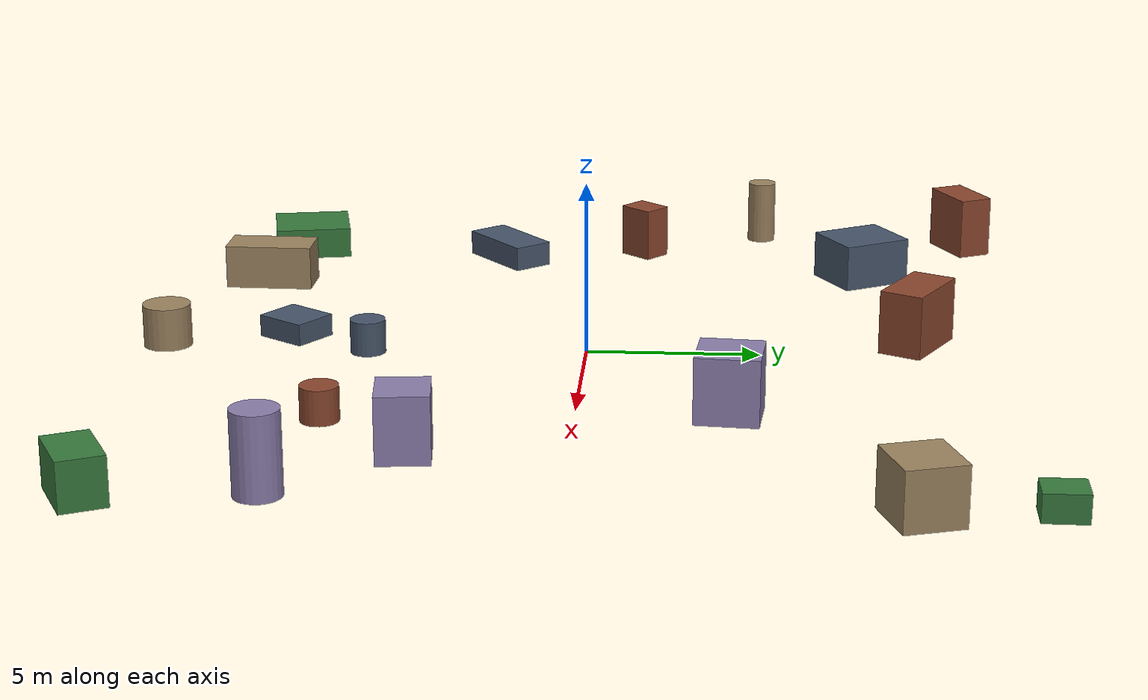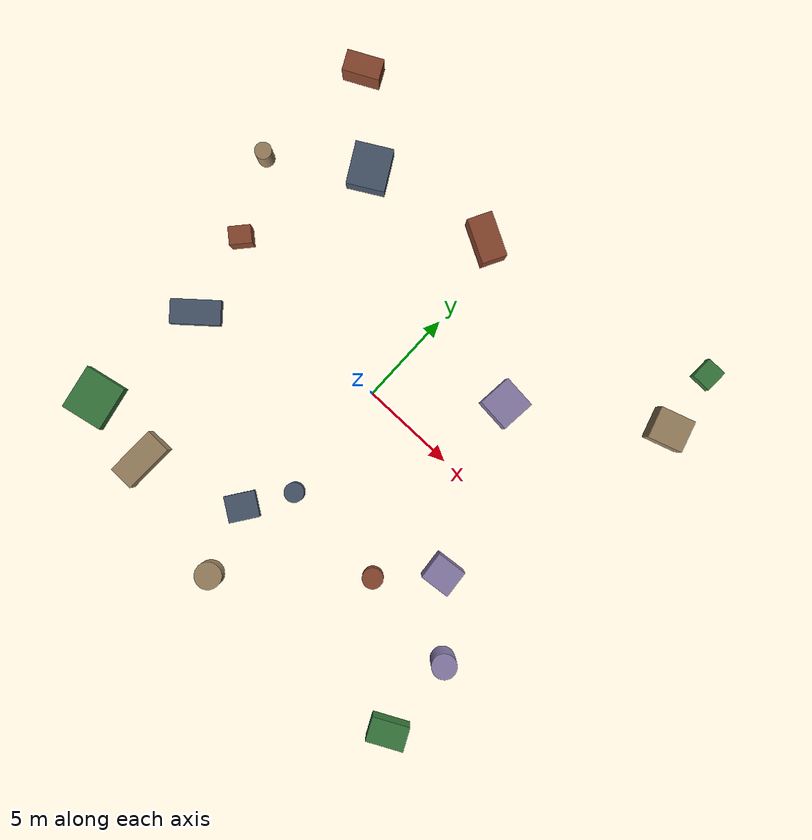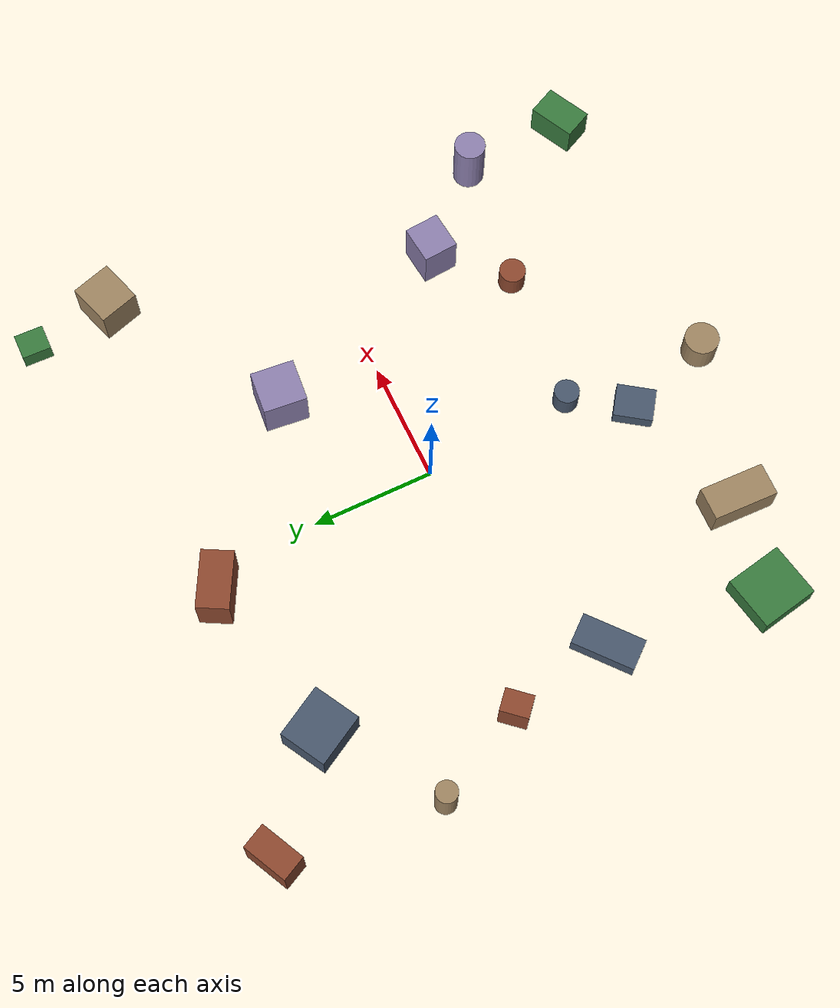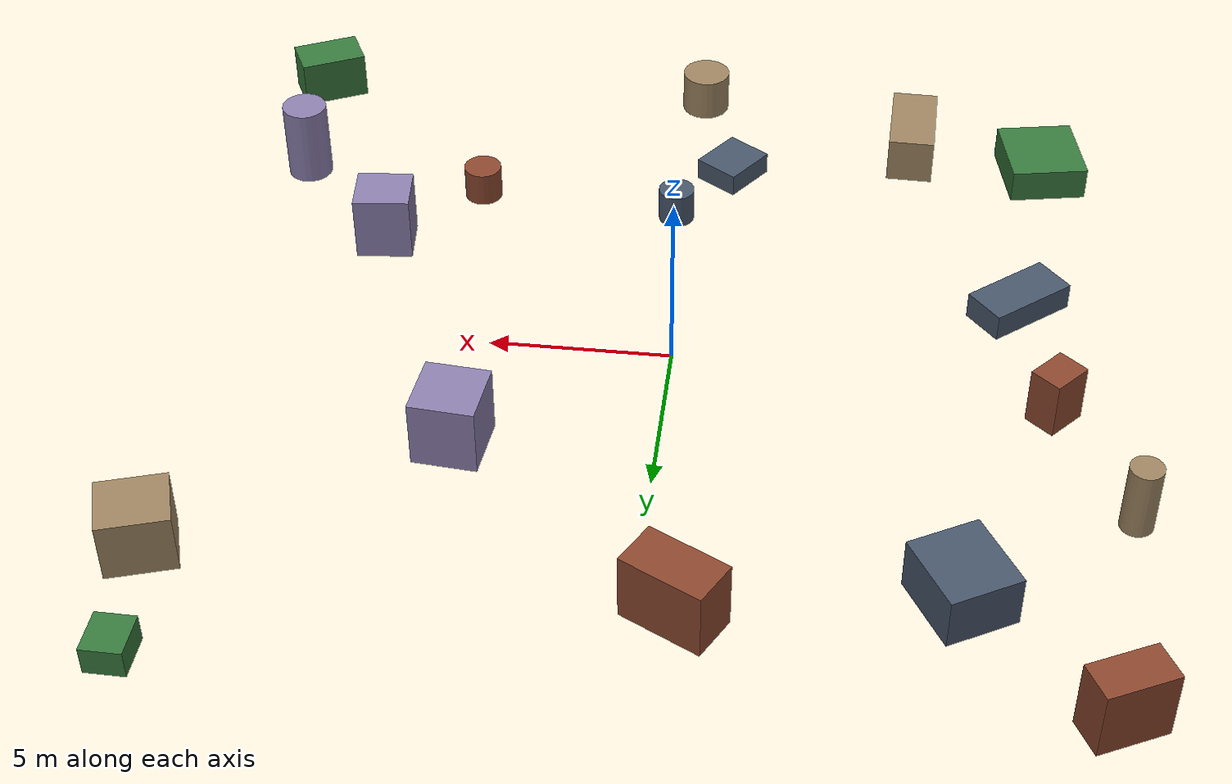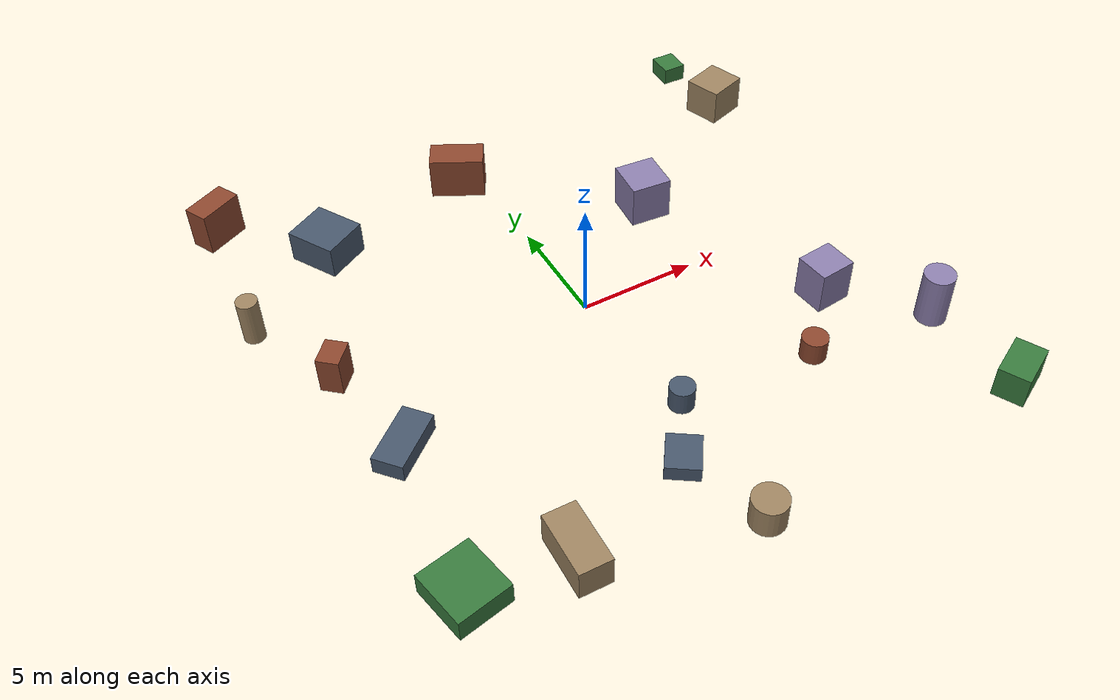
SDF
<sdf version="1.10">
 <world name="robotx_task1_uav_view">
  <gravity>0 0 -9.81</gravity>
  <physics name="physics" type="ode">
   <max_step_size>0.002</max_step_size>
   <real_time_factor>1.0</real_time_factor>
  </physics>
  <scene>
   <ambient>0.27 0.27 0.27 1.0</ambient>
   <background>0.62 0.75 0.92 1.0</background>
   <shadows>true</shadows>
   <grid>false</grid>
  </scene>
  <light name="sun" type="directional">
   <pose>0 0 300 0 0 0</pose>
   <diffuse>1.00 0.98 0.94 1.0</diffuse>
   <specular>1.00 1.00 1.00 1.0</specular>
   <direction>0.26 -0.12 -1.0</direction>
   <attenuation>
    <range>2500</range>
    <constant>0.85</constant>
    <linear>0.001</linear>
    <quadratic>0.00005</quadratic>
   </attenuation>
  </light>
  <plugin filename="gz-sim-physics-system" name="gz::sim::systems::Physics"/>
  <plugin filename="gz-sim-user-commands-system" name="gz::sim::systems::UserCommands"/>
  <plugin filename="gz-sim-scene-broadcaster-system" name="gz::sim::systems::SceneBroadcaster"/>
  <plugin filename="gz-sim-sensors-system" name="gz::sim::systems::Sensors">
   <render_engine>ogre2</render_engine>
  </plugin>
  <model name="scene_clutter_box_000">
   <static>true</static>
   <pose>-6.219 -10.278 0.683 0 0 -1.597080</pose>
   <link name="link">
    <visual name="v">
     <geometry><box><size>2.664 1.328 1.325</size></box></geometry>
     <material><ambient>0.45 0.38 0.32 1.0</ambient><diffuse>0.62 0.52 0.38 1.0</diffuse></material>
    </visual>
   </link>
  </model>
  <model name="scene_clutter_box_001">
   <static>true</static>
   <pose>-7.771 8.243 0.724 0 0 -2.627709</pose>
   <link name="link">
    <visual name="v">
     <geometry><box><size>1.978 2.196 1.408</size></box></geometry>
     <material><ambient>0.18 0.22 0.28 1.0</ambient><diffuse>0.28 0.34 0.42 1.0</diffuse></material>
    </visual>
   </link>
  </model>
  <model name="scene_clutter_box_002">
   <static>true</static>
   <pose>-1.053 9.536 0.956 0 0 -0.490936</pose>
   <link name="link">
    <visual name="v">
     <geometry><box><size>2.330 1.303 1.871</size></box></geometry>
     <material><ambient>0.35 0.16 0.12 1.0</ambient><diffuse>0.55 0.28 0.18 1.0</diffuse></material>
    </visual>
   </link>
  </model>
  <model name="scene_clutter_box_003">
   <static>true</static>
   <pose>11.764 12.211 0.409 0 0 -1.589477</pose>
   <link name="link">
    <visual name="v">
     <geometry><box><size>1.196 1.062 0.777</size></box></geometry>
     <material><ambient>0.12 0.30 0.14 1.0</ambient><diffuse>0.22 0.48 0.24 1.0</diffuse></material>
    </visual>
   </link>
  </model>
  <model name="scene_clutter_box_004">
   <static>true</static>
   <pose>8.699 -4.169 0.954 0 0 0.095027</pose>
   <link name="link">
    <visual name="v">
     <geometry><box><size>1.582 1.454 1.867</size></box></geometry>
     <material><ambient>0.40 0.35 0.50 1.0</ambient><diffuse>0.55 0.50 0.68 1.0</diffuse></material>
    </visual>
   </link>
  </model>
  <model name="scene_clutter_cyl_005">
   <static>true</static>
   <pose>0.211 -12.183 0.671 0 0 0.648876</pose>
   <link name="link">
    <visual name="v">
     <geometry><cylinder><radius>0.701</radius><length>1.242</length></cylinder></geometry>
     <material><ambient>0.45 0.38 0.32 1.0</ambient><diffuse>0.62 0.52 0.38 1.0</diffuse></material>
    </visual>
   </link>
  </model>
  <model name="scene_clutter_cyl_006">
   <static>true</static>
   <pose>0.527 -6.271 0.548 0 0 0.602536</pose>
   <link name="link">
    <visual name="v">
     <geometry><cylinder><radius>0.512</radius><length>0.996</length></cylinder></geometry>
     <material><ambient>0.18 0.22 0.28 1.0</ambient><diffuse>0.28 0.34 0.42 1.0</diffuse></material>
    </visual>
   </link>
  </model>
  <model name="scene_clutter_box_007">
   <static>true</static>
   <pose>-11.393 11.654 0.966 0 0 0.463789</pose>
   <link name="link">
    <visual name="v">
     <geometry><box><size>1.908 1.063 1.892</size></box></geometry>
     <material><ambient>0.35 0.16 0.12 1.0</ambient><diffuse>0.55 0.28 0.18 1.0</diffuse></material>
    </visual>
   </link>
  </model>
  <model name="scene_clutter_box_008">
   <static>true</static>
   <pose>-10.071 -9.641 0.494 0 0 1.763439</pose>
   <link name="link">
    <visual name="v">
     <geometry><box><size>2.379 2.204 0.948</size></box></geometry>
     <material><ambient>0.12 0.30 0.14 1.0</ambient><diffuse>0.22 0.48 0.24 1.0</diffuse></material>
    </visual>
   </link>
  </model>
  <model name="scene_clutter_cyl_009">
   <static>true</static>
   <pose>11.707 -7.378 1.191 0 0 1.843822</pose>
   <link name="link">
    <visual name="v">
     <geometry><cylinder><radius>0.643</radius><length>2.282</length></cylinder></geometry>
     <material><ambient>0.40 0.35 0.50 1.0</ambient><diffuse>0.55 0.50 0.68 1.0</diffuse></material>
    </visual>
   </link>
  </model>
  <model name="scene_clutter_cyl_010">
   <static>true</static>
   <pose>-12.090 5.134 1.021 0 0 1.799573</pose>
   <link name="link">
    <visual name="v">
     <geometry><cylinder><radius>0.438</radius><length>1.942</length></cylinder></geometry>
     <material><ambient>0.45 0.38 0.32 1.0</ambient><diffuse>0.62 0.52 0.38 1.0</diffuse></material>
    </visual>
   </link>
  </model>
  <model name="scene_clutter_box_011">
   <static>true</static>
   <pose>-9.309 -3.035 0.397 0 0 0.701134</pose>
   <link name="link">
    <visual name="v">
     <geometry><box><size>2.583 1.267 0.753</size></box></geometry>
     <material><ambient>0.18 0.22 0.28 1.0</ambient><diffuse>0.28 0.34 0.42 1.0</diffuse></material>
    </visual>
   </link>
  </model>
  <model name="scene_clutter_cyl_012">
   <static>true</static>
   <pose>6.312 -6.733 0.550 0 0 -2.970141</pose>
   <link name="link">
    <visual name="v">
     <geometry><cylinder><radius>0.539</radius><length>1.001</length></cylinder></geometry>
     <material><ambient>0.35 0.16 0.12 1.0</ambient><diffuse>0.55 0.28 0.18 1.0</diffuse></material>
    </visual>
   </link>
  </model>
  <model name="scene_clutter_box_013">
   <static>true</static>
   <pose>12.067 -11.828 0.704 0 0 0.460325</pose>
   <link name="link">
    <visual name="v">
     <geometry><box><size>1.948 1.272 1.369</size></box></geometry>
     <material><ambient>0.12 0.30 0.14 1.0</ambient><diffuse>0.22 0.48 0.24 1.0</diffuse></material>
    </visual>
   </link>
  </model>
  <model name="scene_clutter_box_014">
   <static>true</static>
   <pose>5.236 4.143 0.964 0 0 -1.662101</pose>
   <link name="link">
    <visual name="v">
     <geometry><box><size>1.783 1.758 1.888</size></box></geometry>
     <material><ambient>0.40 0.35 0.50 1.0</ambient><diffuse>0.55 0.50 0.68 1.0</diffuse></material>
    </visual>
   </link>
  </model>
  <model name="scene_clutter_box_015">
   <static>true</static>
   <pose>12.117 8.786 0.840 0 0 1.881881</pose>
   <link name="link">
    <visual name="v">
     <geometry><box><size>1.675 1.832 1.641</size></box></geometry>
     <material><ambient>0.45 0.38 0.32 1.0</ambient><diffuse>0.62 0.52 0.38 1.0</diffuse></material>
    </visual>
   </link>
  </model>
  <model name="scene_clutter_box_016">
   <static>true</static>
   <pose>-0.923 -8.614 0.344 0 0 2.534249</pose>
   <link name="link">
    <visual name="v">
     <geometry><box><size>1.367 1.593 0.648</size></box></geometry>
     <material><ambient>0.18 0.22 0.28 1.0</ambient><diffuse>0.28 0.34 0.42 1.0</diffuse></material>
    </visual>
   </link>
  </model>
  <model name="scene_clutter_box_017">
   <static>true</static>
   <pose>-10.160 1.314 0.827 0 0 2.419994</pose>
   <link name="link">
    <visual name="v">
     <geometry><box><size>0.921 1.150 1.614</size></box></geometry>
     <material><ambient>0.35 0.16 0.12 1.0</ambient><diffuse>0.55 0.28 0.18 1.0</diffuse></material>
    </visual>
   </link>
  </model>
  <model name="uav_dataset_camera">
   <static>false</static>
   <pose>0 0 26 0 0 0</pose>
   <plugin filename="librobotx_overhead_motion_plugin.dylib" name="robotx::OverheadMotionPlugin">
    <radius_x_m>10.40182</radius_x_m>
    <radius_y_m>9.83856</radius_y_m>
    <angular_speed_rad_s>0.037019</angular_speed_rad_s>
    <phase_rad>4.672845</phase_rad>
    <z_wobble_m>0.02631</z_wobble_m>
    <z_wobble_hz>0.05819</z_wobble_hz>
    <z_wobble_phase_rad>6.208584</z_wobble_phase_rad>
   </plugin>
   <link name="camera_link">
    <gravity>false</gravity>
    <sensor name="top_down_rgb" type="camera">
     <always_on>true</always_on>
     <update_rate>20</update_rate>
     <pose>0 0 0 0 1.57079632679 0</pose>
     <camera>
      <horizontal_fov>1.05</horizontal_fov>
      <image><width>1920</width><height>1080</height><format>R8G8B8</format></image>
      <clip><near>0.2</near><far>600</far></clip>
     </camera>
     <topic>/robotx/uav/camera/image_raw</topic>
     <visualize>true</visualize>
    </sensor>
   </link>
  </model>
 </world>
</sdf>
